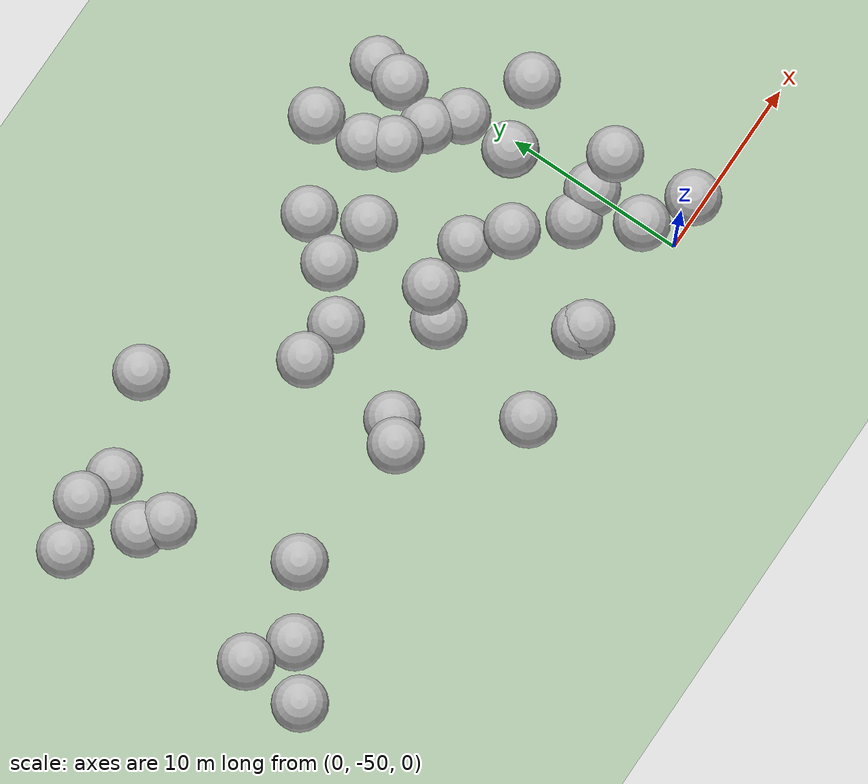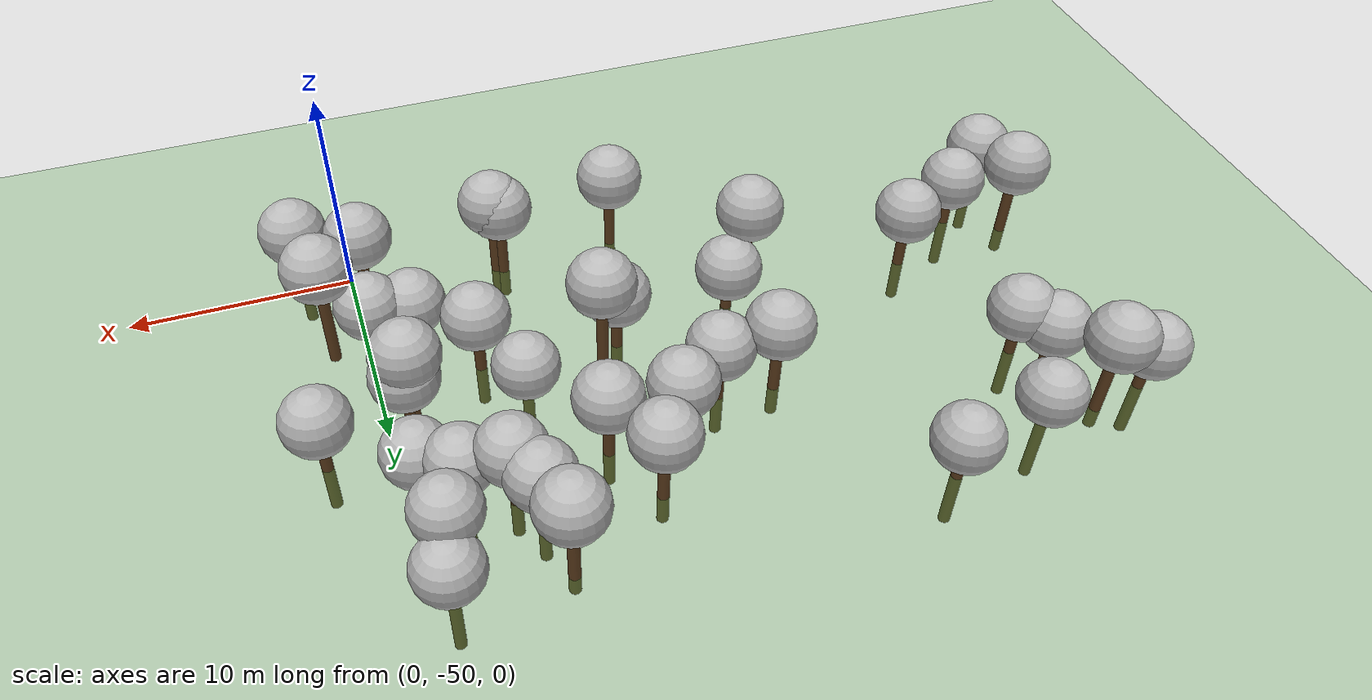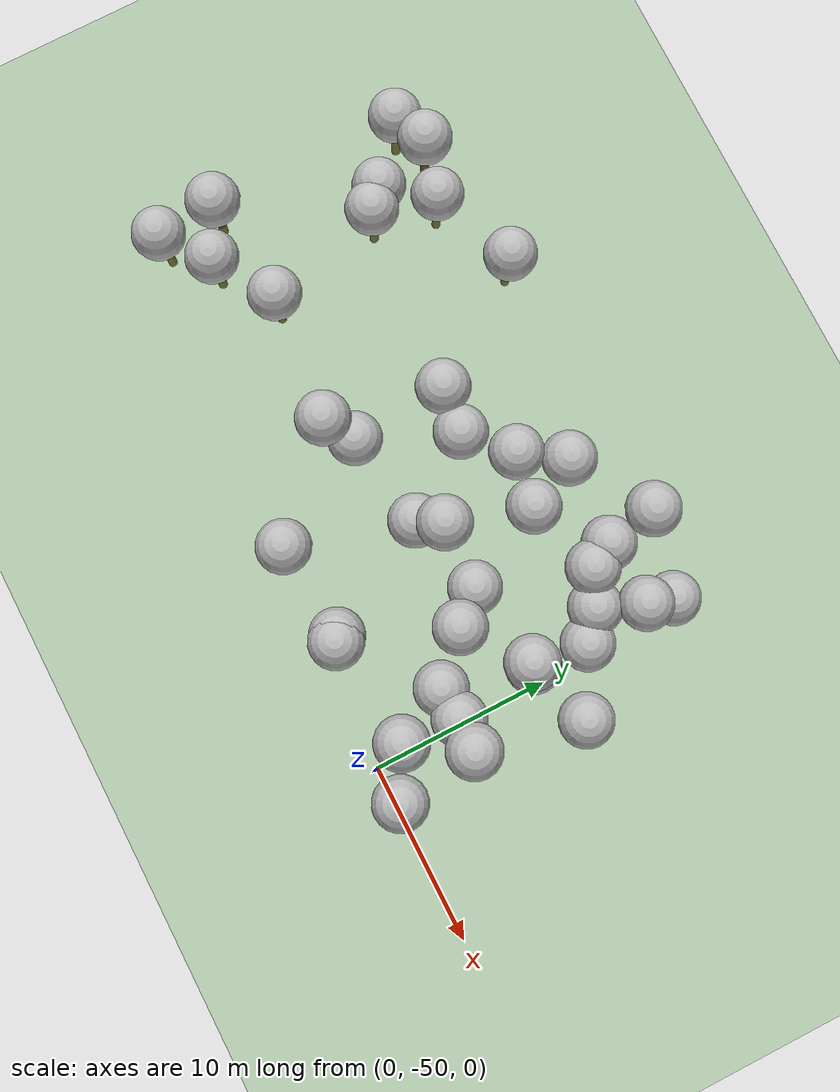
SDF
<sdf version="1.5">
 <world name="default">
  <model name="tree_simple491">
   <static>1</static>
   <link name="link">
    <pose>0 0 0.1 0 -0 0</pose>
    <collision name="collision_trunk">
     <pose>0 0 2 0 -0 0</pose>
     <geometry><cylinder><radius>0.25</radius><length>4</length></cylinder></geometry>
    </collision>
    <collision name="collision_treetop">
     <pose>0 0 5.2 0 -0 0</pose>
     <geometry><sphere><radius>1.5</radius></sphere></geometry>
    </collision>
    <visual name="trunk">
     <pose>0 0 2 0 -0 0</pose>
     <geometry><cylinder><radius>0.25</radius><length>4</length></cylinder></geometry>
     <material>
      <script>
       <uri>model://tree_simple/scripts</uri>
       <uri>model://tree_simple/materials/textures</uri>
       <name>TreeSimple/Trunk</name>
      </script>
     </material>
    </visual>
    <visual name="treetop">
     <pose>0 0 5.2 0 -0 0</pose>
     <geometry><sphere><radius>1.5</radius></sphere></geometry>
     <material>
      <script>
       <uri>model://tree_simple/scripts</uri>
       <uri>model://tree_simple/materials/textures</uri>
       <name>TreeSimple/Treetop</name>
      </script>
     </material>
    </visual>
   </link>
   <pose>-12.3902503735 -49.1082665042 -1.446654089868648 0 -0 0</pose>
  </model>
  <model name="tree_simple458">
   <static>1</static>
   <link name="link">
    <pose>0 0 0.1 0 -0 0</pose>
    <collision name="collision_trunk">
     <pose>0 0 2 0 -0 0</pose>
     <geometry><cylinder><radius>0.25</radius><length>4</length></cylinder></geometry>
    </collision>
    <collision name="collision_treetop">
     <pose>0 0 5.2 0 -0 0</pose>
     <geometry><sphere><radius>1.5</radius></sphere></geometry>
    </collision>
    <visual name="trunk">
     <pose>0 0 2 0 -0 0</pose>
     <geometry><cylinder><radius>0.25</radius><length>4</length></cylinder></geometry>
     <material>
      <script>
       <uri>model://tree_simple/scripts</uri>
       <uri>model://tree_simple/materials/textures</uri>
       <name>TreeSimple/Trunk</name>
      </script>
     </material>
    </visual>
    <visual name="treetop">
     <pose>0 0 5.2 0 -0 0</pose>
     <geometry><sphere><radius>1.5</radius></sphere></geometry>
     <material>
      <script>
       <uri>model://tree_simple/scripts</uri>
       <uri>model://tree_simple/materials/textures</uri>
       <name>TreeSimple/Treetop</name>
      </script>
     </material>
    </visual>
   </link>
   <pose>2.06613671761 -49.6676263837 -1.4684731683148164 0 -0 0</pose>
  </model>
  <model name="tree_simple454">
   <static>1</static>
   <link name="link">
    <pose>0 0 0.1 0 -0 0</pose>
    <collision name="collision_trunk">
     <pose>0 0 2 0 -0 0</pose>
     <geometry><cylinder><radius>0.25</radius><length>4</length></cylinder></geometry>
    </collision>
    <collision name="collision_treetop">
     <pose>0 0 5.2 0 -0 0</pose>
     <geometry><sphere><radius>1.5</radius></sphere></geometry>
    </collision>
    <visual name="trunk">
     <pose>0 0 2 0 -0 0</pose>
     <geometry><cylinder><radius>0.25</radius><length>4</length></cylinder></geometry>
     <material>
      <script>
       <uri>model://tree_simple/scripts</uri>
       <uri>model://tree_simple/materials/textures</uri>
       <name>TreeSimple/Trunk</name>
      </script>
     </material>
    </visual>
    <visual name="treetop">
     <pose>0 0 5.2 0 -0 0</pose>
     <geometry><sphere><radius>1.5</radius></sphere></geometry>
     <material>
      <script>
       <uri>model://tree_simple/scripts</uri>
       <uri>model://tree_simple/materials/textures</uri>
       <name>TreeSimple/Treetop</name>
      </script>
     </material>
    </visual>
   </link>
   <pose>-1.19781681146 -40.4261160925 -1.1298682744562434 0 -0 0</pose>
  </model>
  <model name="tree_simple447">
   <static>1</static>
   <link name="link">
    <pose>0 0 0.1 0 -0 0</pose>
    <collision name="collision_trunk">
     <pose>0 0 2 0 -0 0</pose>
     <geometry><cylinder><radius>0.25</radius><length>4</length></cylinder></geometry>
    </collision>
    <collision name="collision_treetop">
     <pose>0 0 5.2 0 -0 0</pose>
     <geometry><sphere><radius>1.5</radius></sphere></geometry>
    </collision>
    <visual name="trunk">
     <pose>0 0 2 0 -0 0</pose>
     <geometry><cylinder><radius>0.25</radius><length>4</length></cylinder></geometry>
     <material>
      <script>
       <uri>model://tree_simple/scripts</uri>
       <uri>model://tree_simple/materials/textures</uri>
       <name>TreeSimple/Trunk</name>
      </script>
     </material>
    </visual>
    <visual name="treetop">
     <pose>0 0 5.2 0 -0 0</pose>
     <geometry><sphere><radius>1.5</radius></sphere></geometry>
     <material>
      <script>
       <uri>model://tree_simple/scripts</uri>
       <uri>model://tree_simple/materials/textures</uri>
       <name>TreeSimple/Treetop</name>
      </script>
     </material>
    </visual>
   </link>
   <pose>-6.1509747219 -41.0422803315 -4.0 0 -0 0</pose>
  </model>
  <model name="tree_simple433">
   <static>1</static>
   <link name="link">
    <pose>0 0 0.1 0 -0 0</pose>
    <collision name="collision_trunk">
     <pose>0 0 2 0 -0 0</pose>
     <geometry><cylinder><radius>0.25</radius><length>4</length></cylinder></geometry>
    </collision>
    <collision name="collision_treetop">
     <pose>0 0 5.2 0 -0 0</pose>
     <geometry><sphere><radius>1.5</radius></sphere></geometry>
    </collision>
    <visual name="trunk">
     <pose>0 0 2 0 -0 0</pose>
     <geometry><cylinder><radius>0.25</radius><length>4</length></cylinder></geometry>
     <material>
      <script>
       <uri>model://tree_simple/scripts</uri>
       <uri>model://tree_simple/materials/textures</uri>
       <name>TreeSimple/Trunk</name>
      </script>
     </material>
    </visual>
    <visual name="treetop">
     <pose>0 0 5.2 0 -0 0</pose>
     <geometry><sphere><radius>1.5</radius></sphere></geometry>
     <material>
      <script>
       <uri>model://tree_simple/scripts</uri>
       <uri>model://tree_simple/materials/textures</uri>
       <name>TreeSimple/Treetop</name>
      </script>
     </material>
    </visual>
   </link>
   <pose>-27.0163612707 -36.6075625798 -2.740169064437388 0 -0 0</pose>
  </model>
  <model name="tree_simple408">
   <static>1</static>
   <link name="link">
    <pose>0 0 0.1 0 -0 0</pose>
    <collision name="collision_trunk">
     <pose>0 0 2 0 -0 0</pose>
     <geometry><cylinder><radius>0.25</radius><length>4</length></cylinder></geometry>
    </collision>
    <collision name="collision_treetop">
     <pose>0 0 5.2 0 -0 0</pose>
     <geometry><sphere><radius>1.5</radius></sphere></geometry>
    </collision>
    <visual name="trunk">
     <pose>0 0 2 0 -0 0</pose>
     <geometry><cylinder><radius>0.25</radius><length>4</length></cylinder></geometry>
     <material>
      <script>
       <uri>model://tree_simple/scripts</uri>
       <uri>model://tree_simple/materials/textures</uri>
       <name>TreeSimple/Trunk</name>
      </script>
     </material>
    </visual>
    <visual name="treetop">
     <pose>0 0 5.2 0 -0 0</pose>
     <geometry><sphere><radius>1.5</radius></sphere></geometry>
     <material>
      <script>
       <uri>model://tree_simple/scripts</uri>
       <uri>model://tree_simple/materials/textures</uri>
       <name>TreeSimple/Treetop</name>
      </script>
     </material>
    </visual>
   </link>
   <pose>-16.0994347695 -43.1531583175 -3.0136912425464897 0 -0 0</pose>
  </model>
  <model name="tree_simple407">
   <static>1</static>
   <link name="link">
    <pose>0 0 0.1 0 -0 0</pose>
    <collision name="collision_trunk">
     <pose>0 0 2 0 -0 0</pose>
     <geometry><cylinder><radius>0.25</radius><length>4</length></cylinder></geometry>
    </collision>
    <collision name="collision_treetop">
     <pose>0 0 5.2 0 -0 0</pose>
     <geometry><sphere><radius>1.5</radius></sphere></geometry>
    </collision>
    <visual name="trunk">
     <pose>0 0 2 0 -0 0</pose>
     <geometry><cylinder><radius>0.25</radius><length>4</length></cylinder></geometry>
     <material>
      <script>
       <uri>model://tree_simple/scripts</uri>
       <uri>model://tree_simple/materials/textures</uri>
       <name>TreeSimple/Trunk</name>
      </script>
     </material>
    </visual>
    <visual name="treetop">
     <pose>0 0 5.2 0 -0 0</pose>
     <geometry><sphere><radius>1.5</radius></sphere></geometry>
     <material>
      <script>
       <uri>model://tree_simple/scripts</uri>
       <uri>model://tree_simple/materials/textures</uri>
       <name>TreeSimple/Treetop</name>
      </script>
     </material>
    </visual>
   </link>
   <pose>-31.2268758756 -33.0617209784 -2.915334188620734 0 -0 0</pose>
  </model>
  <model name="tree_simple397">
   <static>1</static>
   <link name="link">
    <pose>0 0 0.1 0 -0 0</pose>
    <collision name="collision_trunk">
     <pose>0 0 2 0 -0 0</pose>
     <geometry><cylinder><radius>0.25</radius><length>4</length></cylinder></geometry>
    </collision>
    <collision name="collision_treetop">
     <pose>0 0 5.2 0 -0 0</pose>
     <geometry><sphere><radius>1.5</radius></sphere></geometry>
    </collision>
    <visual name="trunk">
     <pose>0 0 2 0 -0 0</pose>
     <geometry><cylinder><radius>0.25</radius><length>4</length></cylinder></geometry>
     <material>
      <script>
       <uri>model://tree_simple/scripts</uri>
       <uri>model://tree_simple/materials/textures</uri>
       <name>TreeSimple/Trunk</name>
      </script>
     </material>
    </visual>
    <visual name="treetop">
     <pose>0 0 5.2 0 -0 0</pose>
     <geometry><sphere><radius>1.5</radius></sphere></geometry>
     <material>
      <script>
       <uri>model://tree_simple/scripts</uri>
       <uri>model://tree_simple/materials/textures</uri>
       <name>TreeSimple/Treetop</name>
      </script>
     </material>
    </visual>
   </link>
   <pose>-11.3370979395 -35.9987020926 -1.613908657681937 0 -0 0</pose>
  </model>
  <model name="tree_simple382">
   <static>1</static>
   <link name="link">
    <pose>0 0 0.1 0 -0 0</pose>
    <collision name="collision_trunk">
     <pose>0 0 2 0 -0 0</pose>
     <geometry><cylinder><radius>0.25</radius><length>4</length></cylinder></geometry>
    </collision>
    <collision name="collision_treetop">
     <pose>0 0 5.2 0 -0 0</pose>
     <geometry><sphere><radius>1.5</radius></sphere></geometry>
    </collision>
    <visual name="trunk">
     <pose>0 0 2 0 -0 0</pose>
     <geometry><cylinder><radius>0.25</radius><length>4</length></cylinder></geometry>
     <material>
      <script>
       <uri>model://tree_simple/scripts</uri>
       <uri>model://tree_simple/materials/textures</uri>
       <name>TreeSimple/Trunk</name>
      </script>
     </material>
    </visual>
    <visual name="treetop">
     <pose>0 0 5.2 0 -0 0</pose>
     <geometry><sphere><radius>1.5</radius></sphere></geometry>
     <material>
      <script>
       <uri>model://tree_simple/scripts</uri>
       <uri>model://tree_simple/materials/textures</uri>
       <name>TreeSimple/Treetop</name>
      </script>
     </material>
    </visual>
   </link>
   <pose>-13.7339502639 -38.0385425652 -2.292040055632848 0 -0 0</pose>
  </model>
  <model name="tree_simple368">
   <static>1</static>
   <link name="link">
    <pose>0 0 0.1 0 -0 0</pose>
    <collision name="collision_trunk">
     <pose>0 0 2 0 -0 0</pose>
     <geometry><cylinder><radius>0.25</radius><length>4</length></cylinder></geometry>
    </collision>
    <collision name="collision_treetop">
     <pose>0 0 5.2 0 -0 0</pose>
     <geometry><sphere><radius>1.5</radius></sphere></geometry>
    </collision>
    <visual name="trunk">
     <pose>0 0 2 0 -0 0</pose>
     <geometry><cylinder><radius>0.25</radius><length>4</length></cylinder></geometry>
     <material>
      <script>
       <uri>model://tree_simple/scripts</uri>
       <uri>model://tree_simple/materials/textures</uri>
       <name>TreeSimple/Trunk</name>
      </script>
     </material>
    </visual>
    <visual name="treetop">
     <pose>0 0 5.2 0 -0 0</pose>
     <geometry><sphere><radius>1.5</radius></sphere></geometry>
     <material>
      <script>
       <uri>model://tree_simple/scripts</uri>
       <uri>model://tree_simple/materials/textures</uri>
       <name>TreeSimple/Treetop</name>
      </script>
     </material>
    </visual>
   </link>
   <pose>-2.27490769551 -35.975306792 -2.953980325982581 0 -0 0</pose>
  </model>
  <model name="tree_simple357">
   <static>1</static>
   <link name="link">
    <pose>0 0 0.1 0 -0 0</pose>
    <collision name="collision_trunk">
     <pose>0 0 2 0 -0 0</pose>
     <geometry><cylinder><radius>0.25</radius><length>4</length></cylinder></geometry>
    </collision>
    <collision name="collision_treetop">
     <pose>0 0 5.2 0 -0 0</pose>
     <geometry><sphere><radius>1.5</radius></sphere></geometry>
    </collision>
    <visual name="trunk">
     <pose>0 0 2 0 -0 0</pose>
     <geometry><cylinder><radius>0.25</radius><length>4</length></cylinder></geometry>
     <material>
      <script>
       <uri>model://tree_simple/scripts</uri>
       <uri>model://tree_simple/materials/textures</uri>
       <name>TreeSimple/Trunk</name>
      </script>
     </material>
    </visual>
    <visual name="treetop">
     <pose>0 0 5.2 0 -0 0</pose>
     <geometry><sphere><radius>1.5</radius></sphere></geometry>
     <material>
      <script>
       <uri>model://tree_simple/scripts</uri>
       <uri>model://tree_simple/materials/textures</uri>
       <name>TreeSimple/Treetop</name>
      </script>
     </material>
    </visual>
   </link>
   <pose>-28.5404779553 -45.5660911112 -2.762881847507172 0 -0 0</pose>
  </model>
  <model name="tree_simple348">
   <static>1</static>
   <link name="link">
    <pose>0 0 0.1 0 -0 0</pose>
    <collision name="collision_trunk">
     <pose>0 0 2 0 -0 0</pose>
     <geometry><cylinder><radius>0.25</radius><length>4</length></cylinder></geometry>
    </collision>
    <collision name="collision_treetop">
     <pose>0 0 5.2 0 -0 0</pose>
     <geometry><sphere><radius>1.5</radius></sphere></geometry>
    </collision>
    <visual name="trunk">
     <pose>0 0 2 0 -0 0</pose>
     <geometry><cylinder><radius>0.25</radius><length>4</length></cylinder></geometry>
     <material>
      <script>
       <uri>model://tree_simple/scripts</uri>
       <uri>model://tree_simple/materials/textures</uri>
       <name>TreeSimple/Trunk</name>
      </script>
     </material>
    </visual>
    <visual name="treetop">
     <pose>0 0 5.2 0 -0 0</pose>
     <geometry><sphere><radius>1.5</radius></sphere></geometry>
     <material>
      <script>
       <uri>model://tree_simple/scripts</uri>
       <uri>model://tree_simple/materials/textures</uri>
       <name>TreeSimple/Treetop</name>
      </script>
     </material>
    </visual>
   </link>
   <pose>-31.0103174471 -47.5688671712 -2.7056116174574667 0 -0 0</pose>
  </model>
  <model name="tree_simple344">
   <static>1</static>
   <link name="link">
    <pose>0 0 0.1 0 -0 0</pose>
    <collision name="collision_trunk">
     <pose>0 0 2 0 -0 0</pose>
     <geometry><cylinder><radius>0.25</radius><length>4</length></cylinder></geometry>
    </collision>
    <collision name="collision_treetop">
     <pose>0 0 5.2 0 -0 0</pose>
     <geometry><sphere><radius>1.5</radius></sphere></geometry>
    </collision>
    <visual name="trunk">
     <pose>0 0 2 0 -0 0</pose>
     <geometry><cylinder><radius>0.25</radius><length>4</length></cylinder></geometry>
     <material>
      <script>
       <uri>model://tree_simple/scripts</uri>
       <uri>model://tree_simple/materials/textures</uri>
       <name>TreeSimple/Trunk</name>
      </script>
     </material>
    </visual>
    <visual name="treetop">
     <pose>0 0 5.2 0 -0 0</pose>
     <geometry><sphere><radius>1.5</radius></sphere></geometry>
     <material>
      <script>
       <uri>model://tree_simple/scripts</uri>
       <uri>model://tree_simple/materials/textures</uri>
       <name>TreeSimple/Treetop</name>
      </script>
     </material>
    </visual>
   </link>
   <pose>-1.01406181855 -40.356708741 -2.3311334186154897 0 -0 0</pose>
  </model>
  <model name="tree_simple334">
   <static>1</static>
   <link name="link">
    <pose>0 0 0.1 0 -0 0</pose>
    <collision name="collision_trunk">
     <pose>0 0 2 0 -0 0</pose>
     <geometry><cylinder><radius>0.25</radius><length>4</length></cylinder></geometry>
    </collision>
    <collision name="collision_treetop">
     <pose>0 0 5.2 0 -0 0</pose>
     <geometry><sphere><radius>1.5</radius></sphere></geometry>
    </collision>
    <visual name="trunk">
     <pose>0 0 2 0 -0 0</pose>
     <geometry><cylinder><radius>0.25</radius><length>4</length></cylinder></geometry>
     <material>
      <script>
       <uri>model://tree_simple/scripts</uri>
       <uri>model://tree_simple/materials/textures</uri>
       <name>TreeSimple/Trunk</name>
      </script>
     </material>
    </visual>
    <visual name="treetop">
     <pose>0 0 5.2 0 -0 0</pose>
     <geometry><sphere><radius>1.5</radius></sphere></geometry>
     <material>
      <script>
       <uri>model://tree_simple/scripts</uri>
       <uri>model://tree_simple/materials/textures</uri>
       <name>TreeSimple/Treetop</name>
      </script>
     </material>
    </visual>
   </link>
   <pose>-4.1581298625 -35.2035688942 -2.141659968928244 0 -0 0</pose>
  </model>
  <model name="tree_simple305">
   <static>1</static>
   <link name="link">
    <pose>0 0 0.1 0 -0 0</pose>
    <collision name="collision_trunk">
     <pose>0 0 2 0 -0 0</pose>
     <geometry><cylinder><radius>0.25</radius><length>4</length></cylinder></geometry>
    </collision>
    <collision name="collision_treetop">
     <pose>0 0 5.2 0 -0 0</pose>
     <geometry><sphere><radius>1.5</radius></sphere></geometry>
    </collision>
    <visual name="trunk">
     <pose>0 0 2 0 -0 0</pose>
     <geometry><cylinder><radius>0.25</radius><length>4</length></cylinder></geometry>
     <material>
      <script>
       <uri>model://tree_simple/scripts</uri>
       <uri>model://tree_simple/materials/textures</uri>
       <name>TreeSimple/Trunk</name>
      </script>
     </material>
    </visual>
    <visual name="treetop">
     <pose>0 0 5.2 0 -0 0</pose>
     <geometry><sphere><radius>1.5</radius></sphere></geometry>
     <material>
      <script>
       <uri>model://tree_simple/scripts</uri>
       <uri>model://tree_simple/materials/textures</uri>
       <name>TreeSimple/Treetop</name>
      </script>
     </material>
    </visual>
   </link>
   <pose>-16.2250054706 -37.82270562 -1.6564954732907413 0 -0 0</pose>
  </model>
  <model name="tree_simple285">
   <static>1</static>
   <link name="link">
    <pose>0 0 0.1 0 -0 0</pose>
    <collision name="collision_trunk">
     <pose>0 0 2 0 -0 0</pose>
     <geometry><cylinder><radius>0.25</radius><length>4</length></cylinder></geometry>
    </collision>
    <collision name="collision_treetop">
     <pose>0 0 5.2 0 -0 0</pose>
     <geometry><sphere><radius>1.5</radius></sphere></geometry>
    </collision>
    <visual name="trunk">
     <pose>0 0 2 0 -0 0</pose>
     <geometry><cylinder><radius>0.25</radius><length>4</length></cylinder></geometry>
     <material>
      <script>
       <uri>model://tree_simple/scripts</uri>
       <uri>model://tree_simple/materials/textures</uri>
       <name>TreeSimple/Trunk</name>
      </script>
     </material>
    </visual>
    <visual name="treetop">
     <pose>0 0 5.2 0 -0 0</pose>
     <geometry><sphere><radius>1.5</radius></sphere></geometry>
     <material>
      <script>
       <uri>model://tree_simple/scripts</uri>
       <uri>model://tree_simple/materials/textures</uri>
       <name>TreeSimple/Treetop</name>
      </script>
     </material>
    </visual>
   </link>
   <pose>-0.758587547347 -37.1758267931 -3.3494624499658414 0 -0 0</pose>
  </model>
  <model name="tree_simple257">
   <static>1</static>
   <link name="link">
    <pose>0 0 0.1 0 -0 0</pose>
    <collision name="collision_trunk">
     <pose>0 0 2 0 -0 0</pose>
     <geometry><cylinder><radius>0.25</radius><length>4</length></cylinder></geometry>
    </collision>
    <collision name="collision_treetop">
     <pose>0 0 5.2 0 -0 0</pose>
     <geometry><sphere><radius>1.5</radius></sphere></geometry>
    </collision>
    <visual name="trunk">
     <pose>0 0 2 0 -0 0</pose>
     <geometry><cylinder><radius>0.25</radius><length>4</length></cylinder></geometry>
     <material>
      <script>
       <uri>model://tree_simple/scripts</uri>
       <uri>model://tree_simple/materials/textures</uri>
       <name>TreeSimple/Trunk</name>
      </script>
     </material>
    </visual>
    <visual name="treetop">
     <pose>0 0 5.2 0 -0 0</pose>
     <geometry><sphere><radius>1.5</radius></sphere></geometry>
     <material>
      <script>
       <uri>model://tree_simple/scripts</uri>
       <uri>model://tree_simple/materials/textures</uri>
       <name>TreeSimple/Treetop</name>
      </script>
     </material>
    </visual>
   </link>
   <pose>-17.4076670765 -44.276485645 -0.811381138105659 0 -0 0</pose>
  </model>
  <model name="tree_simple227">
   <static>1</static>
   <link name="link">
    <pose>0 0 0.1 0 -0 0</pose>
    <collision name="collision_trunk">
     <pose>0 0 2 0 -0 0</pose>
     <geometry><cylinder><radius>0.25</radius><length>4</length></cylinder></geometry>
    </collision>
    <collision name="collision_treetop">
     <pose>0 0 5.2 0 -0 0</pose>
     <geometry><sphere><radius>1.5</radius></sphere></geometry>
    </collision>
    <visual name="trunk">
     <pose>0 0 2 0 -0 0</pose>
     <geometry><cylinder><radius>0.25</radius><length>4</length></cylinder></geometry>
     <material>
      <script>
       <uri>model://tree_simple/scripts</uri>
       <uri>model://tree_simple/materials/textures</uri>
       <name>TreeSimple/Trunk</name>
      </script>
     </material>
    </visual>
    <visual name="treetop">
     <pose>0 0 5.2 0 -0 0</pose>
     <geometry><sphere><radius>1.5</radius></sphere></geometry>
     <material>
      <script>
       <uri>model://tree_simple/scripts</uri>
       <uri>model://tree_simple/materials/textures</uri>
       <name>TreeSimple/Treetop</name>
      </script>
     </material>
    </visual>
   </link>
   <pose>-10.5932066879 -42.3249701995 -2.279855245604023 0 -0 0</pose>
  </model>
  <model name="tree_simple223">
   <static>1</static>
   <link name="link">
    <pose>0 0 0.1 0 -0 0</pose>
    <collision name="collision_trunk">
     <pose>0 0 2 0 -0 0</pose>
     <geometry><cylinder><radius>0.25</radius><length>4</length></cylinder></geometry>
    </collision>
    <collision name="collision_treetop">
     <pose>0 0 5.2 0 -0 0</pose>
     <geometry><sphere><radius>1.5</radius></sphere></geometry>
    </collision>
    <visual name="trunk">
     <pose>0 0 2 0 -0 0</pose>
     <geometry><cylinder><radius>0.25</radius><length>4</length></cylinder></geometry>
     <material>
      <script>
       <uri>model://tree_simple/scripts</uri>
       <uri>model://tree_simple/materials/textures</uri>
       <name>TreeSimple/Trunk</name>
      </script>
     </material>
    </visual>
    <visual name="treetop">
     <pose>0 0 5.2 0 -0 0</pose>
     <geometry><sphere><radius>1.5</radius></sphere></geometry>
     <material>
      <script>
       <uri>model://tree_simple/scripts</uri>
       <uri>model://tree_simple/materials/textures</uri>
       <name>TreeSimple/Treetop</name>
      </script>
     </material>
    </visual>
   </link>
   <pose>-0.831429515675 -31.9083877979 -3.892604959654865 0 -0 0</pose>
  </model>
  <model name="tree_simple198">
   <static>1</static>
   <link name="link">
    <pose>0 0 0.1 0 -0 0</pose>
    <collision name="collision_trunk">
     <pose>0 0 2 0 -0 0</pose>
     <geometry><cylinder><radius>0.25</radius><length>4</length></cylinder></geometry>
    </collision>
    <collision name="collision_treetop">
     <pose>0 0 5.2 0 -0 0</pose>
     <geometry><sphere><radius>1.5</radius></sphere></geometry>
    </collision>
    <visual name="trunk">
     <pose>0 0 2 0 -0 0</pose>
     <geometry><cylinder><radius>0.25</radius><length>4</length></cylinder></geometry>
     <material>
      <script>
       <uri>model://tree_simple/scripts</uri>
       <uri>model://tree_simple/materials/textures</uri>
       <name>TreeSimple/Trunk</name>
      </script>
     </material>
    </visual>
    <visual name="treetop">
     <pose>0 0 5.2 0 -0 0</pose>
     <geometry><sphere><radius>1.5</radius></sphere></geometry>
     <material>
      <script>
       <uri>model://tree_simple/scripts</uri>
       <uri>model://tree_simple/materials/textures</uri>
       <name>TreeSimple/Treetop</name>
      </script>
     </material>
    </visual>
   </link>
   <pose>-28.1666068892 -35.6025820701 -3.115322936615753 0 -0 0</pose>
  </model>
  <model name="tree_simple143">
   <static>1</static>
   <link name="link">
    <pose>0 0 0.1 0 -0 0</pose>
    <collision name="collision_trunk">
     <pose>0 0 2 0 -0 0</pose>
     <geometry><cylinder><radius>0.25</radius><length>4</length></cylinder></geometry>
    </collision>
    <collision name="collision_treetop">
     <pose>0 0 5.2 0 -0 0</pose>
     <geometry><sphere><radius>1.5</radius></sphere></geometry>
    </collision>
    <visual name="trunk">
     <pose>0 0 2 0 -0 0</pose>
     <geometry><cylinder><radius>0.25</radius><length>4</length></cylinder></geometry>
     <material>
      <script>
       <uri>model://tree_simple/scripts</uri>
       <uri>model://tree_simple/materials/textures</uri>
       <name>TreeSimple/Trunk</name>
      </script>
     </material>
    </visual>
    <visual name="treetop">
     <pose>0 0 5.2 0 -0 0</pose>
     <geometry><sphere><radius>1.5</radius></sphere></geometry>
     <material>
      <script>
       <uri>model://tree_simple/scripts</uri>
       <uri>model://tree_simple/materials/textures</uri>
       <name>TreeSimple/Treetop</name>
      </script>
     </material>
    </visual>
   </link>
   <pose>-9.58958340045 -41.1660757416 -0.3924260823158561 0 -0 0</pose>
  </model>
  <model name="tree_simple142">
   <static>1</static>
   <link name="link">
    <pose>0 0 0.1 0 -0 0</pose>
    <collision name="collision_trunk">
     <pose>0 0 2 0 -0 0</pose>
     <geometry><cylinder><radius>0.25</radius><length>4</length></cylinder></geometry>
    </collision>
    <collision name="collision_treetop">
     <pose>0 0 5.2 0 -0 0</pose>
     <geometry><sphere><radius>1.5</radius></sphere></geometry>
    </collision>
    <visual name="trunk">
     <pose>0 0 2 0 -0 0</pose>
     <geometry><cylinder><radius>0.25</radius><length>4</length></cylinder></geometry>
     <material>
      <script>
       <uri>model://tree_simple/scripts</uri>
       <uri>model://tree_simple/materials/textures</uri>
       <name>TreeSimple/Trunk</name>
      </script>
     </material>
    </visual>
    <visual name="treetop">
     <pose>0 0 5.2 0 -0 0</pose>
     <geometry><sphere><radius>1.5</radius></sphere></geometry>
     <material>
      <script>
       <uri>model://tree_simple/scripts</uri>
       <uri>model://tree_simple/materials/textures</uri>
       <name>TreeSimple/Treetop</name>
      </script>
     </material>
    </visual>
   </link>
   <pose>2.70227648478 -39.1925835725 -2.512046983281828 0 -0 0</pose>
  </model>
  <model name="tree_simple126">
   <static>1</static>
   <link name="link">
    <pose>0 0 0.1 0 -0 0</pose>
    <collision name="collision_trunk">
     <pose>0 0 2 0 -0 0</pose>
     <geometry><cylinder><radius>0.25</radius><length>4</length></cylinder></geometry>
    </collision>
    <collision name="collision_treetop">
     <pose>0 0 5.2 0 -0 0</pose>
     <geometry><sphere><radius>1.5</radius></sphere></geometry>
    </collision>
    <visual name="trunk">
     <pose>0 0 2 0 -0 0</pose>
     <geometry><cylinder><radius>0.25</radius><length>4</length></cylinder></geometry>
     <material>
      <script>
       <uri>model://tree_simple/scripts</uri>
       <uri>model://tree_simple/materials/textures</uri>
       <name>TreeSimple/Trunk</name>
      </script>
     </material>
    </visual>
    <visual name="treetop">
     <pose>0 0 5.2 0 -0 0</pose>
     <geometry><sphere><radius>1.5</radius></sphere></geometry>
     <material>
      <script>
       <uri>model://tree_simple/scripts</uri>
       <uri>model://tree_simple/materials/textures</uri>
       <name>TreeSimple/Treetop</name>
      </script>
     </material>
    </visual>
   </link>
   <pose>-8.40128153864 -36.4846341971 -1.9870248339529584 0 -0 0</pose>
  </model>
  <model name="tree_simple114">
   <static>1</static>
   <link name="link">
    <pose>0 0 0.1 0 -0 0</pose>
    <collision name="collision_trunk">
     <pose>0 0 2 0 -0 0</pose>
     <geometry><cylinder><radius>0.25</radius><length>4</length></cylinder></geometry>
    </collision>
    <collision name="collision_treetop">
     <pose>0 0 5.2 0 -0 0</pose>
     <geometry><sphere><radius>1.5</radius></sphere></geometry>
    </collision>
    <visual name="trunk">
     <pose>0 0 2 0 -0 0</pose>
     <geometry><cylinder><radius>0.25</radius><length>4</length></cylinder></geometry>
     <material>
      <script>
       <uri>model://tree_simple/scripts</uri>
       <uri>model://tree_simple/materials/textures</uri>
       <name>TreeSimple/Trunk</name>
      </script>
     </material>
    </visual>
    <visual name="treetop">
     <pose>0 0 5.2 0 -0 0</pose>
     <geometry><sphere><radius>1.5</radius></sphere></geometry>
     <material>
      <script>
       <uri>model://tree_simple/scripts</uri>
       <uri>model://tree_simple/materials/textures</uri>
       <name>TreeSimple/Treetop</name>
      </script>
     </material>
    </visual>
   </link>
   <pose>-2.17757547104 -45.1286714355 -2.836499411649978 0 -0 0</pose>
  </model>
  <model name="tree_simple108">
   <static>1</static>
   <link name="link">
    <pose>0 0 0.1 0 -0 0</pose>
    <collision name="collision_trunk">
     <pose>0 0 2 0 -0 0</pose>
     <geometry><cylinder><radius>0.25</radius><length>4</length></cylinder></geometry>
    </collision>
    <collision name="collision_treetop">
     <pose>0 0 5.2 0 -0 0</pose>
     <geometry><sphere><radius>1.5</radius></sphere></geometry>
    </collision>
    <visual name="trunk">
     <pose>0 0 2 0 -0 0</pose>
     <geometry><cylinder><radius>0.25</radius><length>4</length></cylinder></geometry>
     <material>
      <script>
       <uri>model://tree_simple/scripts</uri>
       <uri>model://tree_simple/materials/textures</uri>
       <name>TreeSimple/Trunk</name>
      </script>
     </material>
    </visual>
    <visual name="treetop">
     <pose>0 0 5.2 0 -0 0</pose>
     <geometry><sphere><radius>1.5</radius></sphere></geometry>
     <material>
      <script>
       <uri>model://tree_simple/scripts</uri>
       <uri>model://tree_simple/materials/textures</uri>
       <name>TreeSimple/Treetop</name>
      </script>
     </material>
    </visual>
   </link>
   <pose>1.42931989254 -45.1660279448 -0.0 0 -0 0</pose>
  </model>
  <model name="tree_simple107">
   <static>1</static>
   <link name="link">
    <pose>0 0 0.1 0 -0 0</pose>
    <collision name="collision_trunk">
     <pose>0 0 2 0 -0 0</pose>
     <geometry><cylinder><radius>0.25</radius><length>4</length></cylinder></geometry>
    </collision>
    <collision name="collision_treetop">
     <pose>0 0 5.2 0 -0 0</pose>
     <geometry><sphere><radius>1.5</radius></sphere></geometry>
    </collision>
    <visual name="trunk">
     <pose>0 0 2 0 -0 0</pose>
     <geometry><cylinder><radius>0.25</radius><length>4</length></cylinder></geometry>
     <material>
      <script>
       <uri>model://tree_simple/scripts</uri>
       <uri>model://tree_simple/materials/textures</uri>
       <name>TreeSimple/Trunk</name>
      </script>
     </material>
    </visual>
    <visual name="treetop">
     <pose>0 0 5.2 0 -0 0</pose>
     <geometry><sphere><radius>1.5</radius></sphere></geometry>
     <material>
      <script>
       <uri>model://tree_simple/scripts</uri>
       <uri>model://tree_simple/materials/textures</uri>
       <name>TreeSimple/Treetop</name>
      </script>
     </material>
    </visual>
   </link>
   <pose>-1.23057164025 -33.5425651467 -2.563603921174327 0 -0 0</pose>
  </model>
  <model name="tree_simple102">
   <static>1</static>
   <link name="link">
    <pose>0 0 0.1 0 -0 0</pose>
    <collision name="collision_trunk">
     <pose>0 0 2 0 -0 0</pose>
     <geometry><cylinder><radius>0.25</radius><length>4</length></cylinder></geometry>
    </collision>
    <collision name="collision_treetop">
     <pose>0 0 5.2 0 -0 0</pose>
     <geometry><sphere><radius>1.5</radius></sphere></geometry>
    </collision>
    <visual name="trunk">
     <pose>0 0 2 0 -0 0</pose>
     <geometry><cylinder><radius>0.25</radius><length>4</length></cylinder></geometry>
     <material>
      <script>
       <uri>model://tree_simple/scripts</uri>
       <uri>model://tree_simple/materials/textures</uri>
       <name>TreeSimple/Trunk</name>
      </script>
     </material>
    </visual>
    <visual name="treetop">
     <pose>0 0 5.2 0 -0 0</pose>
     <geometry><sphere><radius>1.5</radius></sphere></geometry>
     <material>
      <script>
       <uri>model://tree_simple/scripts</uri>
       <uri>model://tree_simple/materials/textures</uri>
       <name>TreeSimple/Treetop</name>
      </script>
     </material>
    </visual>
   </link>
   <pose>-9.77870020383 -33.6944059178 -1.6247057896641823 0 -0 0</pose>
  </model>
  <model name="tree_simple90">
   <static>1</static>
   <link name="link">
    <pose>0 0 0.1 0 -0 0</pose>
    <collision name="collision_trunk">
     <pose>0 0 2 0 -0 0</pose>
     <geometry><cylinder><radius>0.25</radius><length>4</length></cylinder></geometry>
    </collision>
    <collision name="collision_treetop">
     <pose>0 0 5.2 0 -0 0</pose>
     <geometry><sphere><radius>1.5</radius></sphere></geometry>
    </collision>
    <visual name="trunk">
     <pose>0 0 2 0 -0 0</pose>
     <geometry><cylinder><radius>0.25</radius><length>4</length></cylinder></geometry>
     <material>
      <script>
       <uri>model://tree_simple/scripts</uri>
       <uri>model://tree_simple/materials/textures</uri>
       <name>TreeSimple/Trunk</name>
      </script>
     </material>
    </visual>
    <visual name="treetop">
     <pose>0 0 5.2 0 -0 0</pose>
     <geometry><sphere><radius>1.5</radius></sphere></geometry>
     <material>
      <script>
       <uri>model://tree_simple/scripts</uri>
       <uri>model://tree_simple/materials/textures</uri>
       <name>TreeSimple/Treetop</name>
      </script>
     </material>
    </visual>
   </link>
   <pose>-7.02064767481 -48.7132309456 -1.621414950779134 0 -0 0</pose>
  </model>
  <model name="tree_simple87">
   <static>1</static>
   <link name="link">
    <pose>0 0 0.1 0 -0 0</pose>
    <collision name="collision_trunk">
     <pose>0 0 2 0 -0 0</pose>
     <geometry><cylinder><radius>0.25</radius><length>4</length></cylinder></geometry>
    </collision>
    <collision name="collision_treetop">
     <pose>0 0 5.2 0 -0 0</pose>
     <geometry><sphere><radius>1.5</radius></sphere></geometry>
    </collision>
    <visual name="trunk">
     <pose>0 0 2 0 -0 0</pose>
     <geometry><cylinder><radius>0.25</radius><length>4</length></cylinder></geometry>
     <material>
      <script>
       <uri>model://tree_simple/scripts</uri>
       <uri>model://tree_simple/materials/textures</uri>
       <name>TreeSimple/Trunk</name>
      </script>
     </material>
    </visual>
    <visual name="treetop">
     <pose>0 0 5.2 0 -0 0</pose>
     <geometry><sphere><radius>1.5</radius></sphere></geometry>
     <material>
      <script>
       <uri>model://tree_simple/scripts</uri>
       <uri>model://tree_simple/materials/textures</uri>
       <name>TreeSimple/Treetop</name>
      </script>
     </material>
    </visual>
   </link>
   <pose>-0.355859953676 -45.0259101281 -2.4651469339864285 0 -0 0</pose>
  </model>
  <model name="tree_simple71">
   <static>1</static>
   <link name="link">
    <pose>0 0 0.1 0 -0 0</pose>
    <collision name="collision_trunk">
     <pose>0 0 2 0 -0 0</pose>
     <geometry><cylinder><radius>0.25</radius><length>4</length></cylinder></geometry>
    </collision>
    <collision name="collision_treetop">
     <pose>0 0 5.2 0 -0 0</pose>
     <geometry><sphere><radius>1.5</radius></sphere></geometry>
    </collision>
    <visual name="trunk">
     <pose>0 0 2 0 -0 0</pose>
     <geometry><cylinder><radius>0.25</radius><length>4</length></cylinder></geometry>
     <material>
      <script>
       <uri>model://tree_simple/scripts</uri>
       <uri>model://tree_simple/materials/textures</uri>
       <name>TreeSimple/Trunk</name>
      </script>
     </material>
    </visual>
    <visual name="treetop">
     <pose>0 0 5.2 0 -0 0</pose>
     <geometry><sphere><radius>1.5</radius></sphere></geometry>
     <material>
      <script>
       <uri>model://tree_simple/scripts</uri>
       <uri>model://tree_simple/materials/textures</uri>
       <name>TreeSimple/Treetop</name>
      </script>
     </material>
    </visual>
   </link>
   <pose>-30.8835620434 -44.1797881367 -1.3953880482838188 0 -0 0</pose>
  </model>
  <model name="tree_simple58">
   <static>1</static>
   <link name="link">
    <pose>0 0 0.1 0 -0 0</pose>
    <collision name="collision_trunk">
     <pose>0 0 2 0 -0 0</pose>
     <geometry><cylinder><radius>0.25</radius><length>4</length></cylinder></geometry>
    </collision>
    <collision name="collision_treetop">
     <pose>0 0 5.2 0 -0 0</pose>
     <geometry><sphere><radius>1.5</radius></sphere></geometry>
    </collision>
    <visual name="trunk">
     <pose>0 0 2 0 -0 0</pose>
     <geometry><cylinder><radius>0.25</radius><length>4</length></cylinder></geometry>
     <material>
      <script>
       <uri>model://tree_simple/scripts</uri>
       <uri>model://tree_simple/materials/textures</uri>
       <name>TreeSimple/Trunk</name>
      </script>
     </material>
    </visual>
    <visual name="treetop">
     <pose>0 0 5.2 0 -0 0</pose>
     <geometry><sphere><radius>1.5</radius></sphere></geometry>
     <material>
      <script>
       <uri>model://tree_simple/scripts</uri>
       <uri>model://tree_simple/materials/textures</uri>
       <name>TreeSimple/Treetop</name>
      </script>
     </material>
    </visual>
   </link>
   <pose>-4.91491945588 -33.8245636998 -2.3183361450298974 0 -0 0</pose>
  </model>
  <model name="tree_simple51">
   <static>1</static>
   <link name="link">
    <pose>0 0 0.1 0 -0 0</pose>
    <collision name="collision_trunk">
     <pose>0 0 2 0 -0 0</pose>
     <geometry><cylinder><radius>0.25</radius><length>4</length></cylinder></geometry>
    </collision>
    <collision name="collision_treetop">
     <pose>0 0 5.2 0 -0 0</pose>
     <geometry><sphere><radius>1.5</radius></sphere></geometry>
    </collision>
    <visual name="trunk">
     <pose>0 0 2 0 -0 0</pose>
     <geometry><cylinder><radius>0.25</radius><length>4</length></cylinder></geometry>
     <material>
      <script>
       <uri>model://tree_simple/scripts</uri>
       <uri>model://tree_simple/materials/textures</uri>
       <name>TreeSimple/Trunk</name>
      </script>
     </material>
    </visual>
    <visual name="treetop">
     <pose>0 0 5.2 0 -0 0</pose>
     <geometry><sphere><radius>1.5</radius></sphere></geometry>
     <material>
      <script>
       <uri>model://tree_simple/scripts</uri>
       <uri>model://tree_simple/materials/textures</uri>
       <name>TreeSimple/Treetop</name>
      </script>
     </material>
    </visual>
   </link>
   <pose>-0.589457780756 -48.2328311378 -1.2400779986801185 0 -0 0</pose>
  </model>
  <model name="tree_simple35">
   <static>1</static>
   <link name="link">
    <pose>0 0 0.1 0 -0 0</pose>
    <collision name="collision_trunk">
     <pose>0 0 2 0 -0 0</pose>
     <geometry><cylinder><radius>0.25</radius><length>4</length></cylinder></geometry>
    </collision>
    <collision name="collision_treetop">
     <pose>0 0 5.2 0 -0 0</pose>
     <geometry><sphere><radius>1.5</radius></sphere></geometry>
    </collision>
    <visual name="trunk">
     <pose>0 0 2 0 -0 0</pose>
     <geometry><cylinder><radius>0.25</radius><length>4</length></cylinder></geometry>
     <material>
      <script>
       <uri>model://tree_simple/scripts</uri>
       <uri>model://tree_simple/materials/textures</uri>
       <name>TreeSimple/Trunk</name>
      </script>
     </material>
    </visual>
    <visual name="treetop">
     <pose>0 0 5.2 0 -0 0</pose>
     <geometry><sphere><radius>1.5</radius></sphere></geometry>
     <material>
      <script>
       <uri>model://tree_simple/scripts</uri>
       <uri>model://tree_simple/materials/textures</uri>
       <name>TreeSimple/Treetop</name>
      </script>
     </material>
    </visual>
   </link>
   <pose>-26.5218868534 -32.8279754305 -4.0 0 -0 0</pose>
  </model>
  <model name="tree_simple27">
   <static>1</static>
   <link name="link">
    <pose>0 0 0.1 0 -0 0</pose>
    <collision name="collision_trunk">
     <pose>0 0 2 0 -0 0</pose>
     <geometry><cylinder><radius>0.25</radius><length>4</length></cylinder></geometry>
    </collision>
    <collision name="collision_treetop">
     <pose>0 0 5.2 0 -0 0</pose>
     <geometry><sphere><radius>1.5</radius></sphere></geometry>
    </collision>
    <visual name="trunk">
     <pose>0 0 2 0 -0 0</pose>
     <geometry><cylinder><radius>0.25</radius><length>4</length></cylinder></geometry>
     <material>
      <script>
       <uri>model://tree_simple/scripts</uri>
       <uri>model://tree_simple/materials/textures</uri>
       <name>TreeSimple/Trunk</name>
      </script>
     </material>
    </visual>
    <visual name="treetop">
     <pose>0 0 5.2 0 -0 0</pose>
     <geometry><sphere><radius>1.5</radius></sphere></geometry>
     <material>
      <script>
       <uri>model://tree_simple/scripts</uri>
       <uri>model://tree_simple/materials/textures</uri>
       <name>TreeSimple/Treetop</name>
      </script>
     </material>
    </visual>
   </link>
   <pose>-28.7263520245 -32.4988311651 -1.139301600170286 0 -0 0</pose>
  </model>
  <model name="tree_simple26">
   <static>1</static>
   <link name="link">
    <pose>0 0 0.1 0 -0 0</pose>
    <collision name="collision_trunk">
     <pose>0 0 2 0 -0 0</pose>
     <geometry><cylinder><radius>0.25</radius><length>4</length></cylinder></geometry>
    </collision>
    <collision name="collision_treetop">
     <pose>0 0 5.2 0 -0 0</pose>
     <geometry><sphere><radius>1.5</radius></sphere></geometry>
    </collision>
    <visual name="trunk">
     <pose>0 0 2 0 -0 0</pose>
     <geometry><cylinder><radius>0.25</radius><length>4</length></cylinder></geometry>
     <material>
      <script>
       <uri>model://tree_simple/scripts</uri>
       <uri>model://tree_simple/materials/textures</uri>
       <name>TreeSimple/Trunk</name>
      </script>
     </material>
    </visual>
    <visual name="treetop">
     <pose>0 0 5.2 0 -0 0</pose>
     <geometry><sphere><radius>1.5</radius></sphere></geometry>
     <material>
      <script>
       <uri>model://tree_simple/scripts</uri>
       <uri>model://tree_simple/materials/textures</uri>
       <name>TreeSimple/Treetop</name>
      </script>
     </material>
    </visual>
   </link>
   <pose>-25.0091602232 -43.4680518984 -2.243818618174921 0 -0 0</pose>
  </model>
  <model name="tree_simple23">
   <static>1</static>
   <link name="link">
    <pose>0 0 0.1 0 -0 0</pose>
    <collision name="collision_trunk">
     <pose>0 0 2 0 -0 0</pose>
     <geometry><cylinder><radius>0.25</radius><length>4</length></cylinder></geometry>
    </collision>
    <collision name="collision_treetop">
     <pose>0 0 5.2 0 -0 0</pose>
     <geometry><sphere><radius>1.5</radius></sphere></geometry>
    </collision>
    <visual name="trunk">
     <pose>0 0 2 0 -0 0</pose>
     <geometry><cylinder><radius>0.25</radius><length>4</length></cylinder></geometry>
     <material>
      <script>
       <uri>model://tree_simple/scripts</uri>
       <uri>model://tree_simple/materials/textures</uri>
       <name>TreeSimple/Trunk</name>
      </script>
     </material>
    </visual>
    <visual name="treetop">
     <pose>0 0 5.2 0 -0 0</pose>
     <geometry><sphere><radius>1.5</radius></sphere></geometry>
     <material>
      <script>
       <uri>model://tree_simple/scripts</uri>
       <uri>model://tree_simple/materials/textures</uri>
       <name>TreeSimple/Treetop</name>
      </script>
     </material>
    </visual>
   </link>
   <pose>-6.72422340922 -48.8953285145 -1.411763111637637 0 -0 0</pose>
  </model>
  <model name="tree_simple10">
   <static>1</static>
   <link name="link">
    <pose>0 0 0.1 0 -0 0</pose>
    <collision name="collision_trunk">
     <pose>0 0 2 0 -0 0</pose>
     <geometry><cylinder><radius>0.25</radius><length>4</length></cylinder></geometry>
    </collision>
    <collision name="collision_treetop">
     <pose>0 0 5.2 0 -0 0</pose>
     <geometry><sphere><radius>1.5</radius></sphere></geometry>
    </collision>
    <visual name="trunk">
     <pose>0 0 2 0 -0 0</pose>
     <geometry><cylinder><radius>0.25</radius><length>4</length></cylinder></geometry>
     <material>
      <script>
       <uri>model://tree_simple/scripts</uri>
       <uri>model://tree_simple/materials/textures</uri>
       <name>TreeSimple/Trunk</name>
      </script>
     </material>
    </visual>
    <visual name="treetop">
     <pose>0 0 5.2 0 -0 0</pose>
     <geometry><sphere><radius>1.5</radius></sphere></geometry>
     <material>
      <script>
       <uri>model://tree_simple/scripts</uri>
       <uri>model://tree_simple/materials/textures</uri>
       <name>TreeSimple/Treetop</name>
      </script>
     </material>
    </visual>
   </link>
   <pose>-5.37126893009 -31.1523453125 -1.0547833268215019 0 -0 0</pose>
  </model>
  <model name="tree_simple4">
   <static>1</static>
   <link name="link">
    <pose>0 0 0.1 0 -0 0</pose>
    <collision name="collision_trunk">
     <pose>0 0 2 0 -0 0</pose>
     <geometry><cylinder><radius>0.25</radius><length>4</length></cylinder></geometry>
    </collision>
    <collision name="collision_treetop">
     <pose>0 0 5.2 0 -0 0</pose>
     <geometry><sphere><radius>1.5</radius></sphere></geometry>
    </collision>
    <visual name="trunk">
     <pose>0 0 2 0 -0 0</pose>
     <geometry><cylinder><radius>0.25</radius><length>4</length></cylinder></geometry>
     <material>
      <script>
       <uri>model://tree_simple/scripts</uri>
       <uri>model://tree_simple/materials/textures</uri>
       <name>TreeSimple/Trunk</name>
      </script>
     </material>
    </visual>
    <visual name="treetop">
     <pose>0 0 5.2 0 -0 0</pose>
     <geometry><sphere><radius>1.5</radius></sphere></geometry>
     <material>
      <script>
       <uri>model://tree_simple/scripts</uri>
       <uri>model://tree_simple/materials/textures</uri>
       <name>TreeSimple/Treetop</name>
      </script>
     </material>
    </visual>
   </link>
   <pose>-4.53333118385 -42.8142187994 -2.274171963007523 0 -0 0</pose>
  </model>
  <model name="tree_simple0">
   <static>1</static>
   <link name="link">
    <pose>0 0 0.1 0 -0 0</pose>
    <collision name="collision_trunk">
     <pose>0 0 2 0 -0 0</pose>
     <geometry><cylinder><radius>0.25</radius><length>4</length></cylinder></geometry>
    </collision>
    <collision name="collision_treetop">
     <pose>0 0 5.2 0 -0 0</pose>
     <geometry><sphere><radius>1.5</radius></sphere></geometry>
    </collision>
    <visual name="trunk">
     <pose>0 0 2 0 -0 0</pose>
     <geometry><cylinder><radius>0.25</radius><length>4</length></cylinder></geometry>
     <material>
      <script>
       <uri>model://tree_simple/scripts</uri>
       <uri>model://tree_simple/materials/textures</uri>
       <name>TreeSimple/Trunk</name>
      </script>
     </material>
    </visual>
    <visual name="treetop">
     <pose>0 0 5.2 0 -0 0</pose>
     <geometry><sphere><radius>1.5</radius></sphere></geometry>
     <material>
      <script>
       <uri>model://tree_simple/scripts</uri>
       <uri>model://tree_simple/materials/textures</uri>
       <name>TreeSimple/Treetop</name>
      </script>
     </material>
    </visual>
   </link>
   <pose>-21.3714553001 -31.0269025129 -3.0043044824840184 0 -0 0</pose>
  </model>
  <model name="ground_plane">
   <static>true</static>
   <link name="link">
    <collision name="collision">
     <geometry><plane><normal>0 0 1</normal><size>250 250</size></plane></geometry>
     <surface><friction><ode><mu>1</mu><mu2>1</mu2></ode></friction></surface>
    </collision>
    <visual name="grass">
     <cast_shadows>false</cast_shadows>
     <geometry><plane><normal>0 0 1</normal><size>150 250</size></plane></geometry>
     <material>
      <script><uri>file://media/materials/scripts/Gazebo.material</uri><name>Gazebo/Grass</name></script>
     </material>
    </visual>
   </link>
  </model>
 </world>
</sdf>
